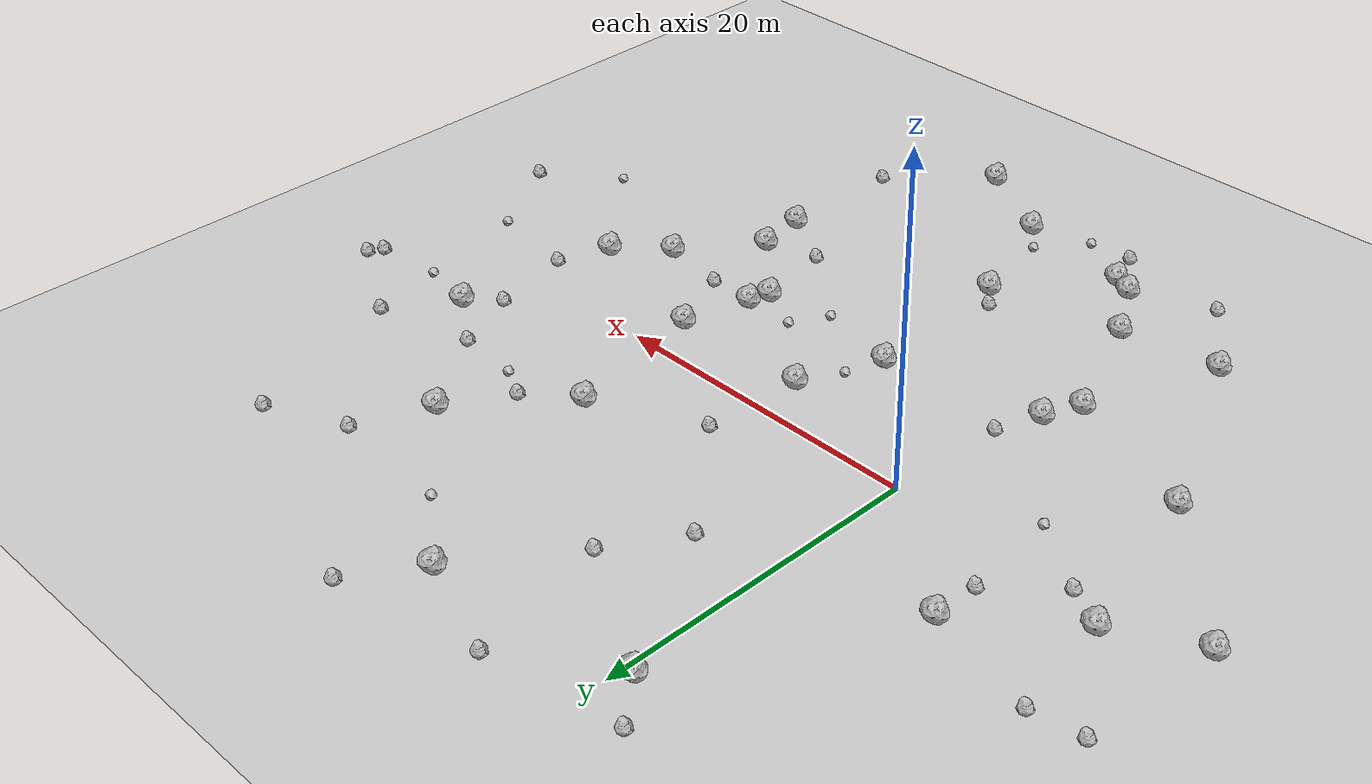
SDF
<sdf version="1.6">
 <world name="default">
  <include><uri>model://custom_ground</uri></include>
  <include><uri>model://sun</uri></include>
  <model name="rock1_0_0">
   <include><uri>model://rock1</uri><pose>17.000178213660845 -28.87803645918632 0.5 0 0 0</pose></include>
  </model>
  <model name="rock1_0_1">
   <include><uri>model://rock1</uri><pose>8.864647107650576 -18.266698169001845 0.5 0 0 0</pose></include>
  </model>
  <model name="rock1_0_2">
   <include><uri>model://rock1</uri><pose>12.009805290419777 20.778022938029174 0.5 0 0 0</pose></include>
  </model>
  <model name="rock1_0_3">
   <include><uri>model://rock1</uri><pose>19.11783946490526 -2.830191385487332 0.5 0 0 0</pose></include>
  </model>
  <model name="rock1_0_4">
   <include><uri>model://rock1</uri><pose>28.275477801045724 -5.199830700054797 0.5 0 0 0</pose></include>
  </model>
  <model name="rock1_0_5">
   <include><uri>model://rock1</uri><pose>8.193961739446433 -8.115403632144961 0.5 0 0 0</pose></include>
  </model>
  <model name="rock1_0_6">
   <include><uri>model://rock1</uri><pose>-18.609844253047257 -1.2738280485224038 0.5 0 0 0</pose></include>
  </model>
  <model name="rock1_0_7">
   <include><uri>model://rock1</uri><pose>-2.461888202025822 -12.49051554507706 0.5 0 0 0</pose></include>
  </model>
  <model name="rock1_0_8">
   <include><uri>model://rock1</uri><pose>-5.673768688803349 -20.82936731330288 0.5 0 0 0</pose></include>
  </model>
  <model name="rock1_0_9">
   <include><uri>model://rock1</uri><pose>22.415381781897032 -15.656251065551377 0.5 0 0 0</pose></include>
  </model>
  <model name="rock1_0_10">
   <include><uri>model://rock1</uri><pose>22.621525095388265 12.513634585462647 0.5 0 0 0</pose></include>
  </model>
  <model name="rock1_0_11">
   <include><uri>model://rock1</uri><pose>17.632661791607063 -8.431889266764895 0.5 0 0 0</pose></include>
  </model>
  <model name="rock1_0_12">
   <include><uri>model://rock1</uri><pose>-1.439267190141436 -10.19157400393167 0.5 0 0 0</pose></include>
  </model>
  <model name="rock1_0_13">
   <include><uri>model://rock1</uri><pose>-11.130100086824799 -9.067945342541982 0.5 0 0 0</pose></include>
  </model>
  <model name="rock1_0_14">
   <include><uri>model://rock1</uri><pose>11.455203371504822 -25.59661957186833 0.5 0 0 0</pose></include>
  </model>
  <model name="rock1_0_15">
   <include><uri>model://rock1</uri><pose>-0.5293848883131922 18.847581116524438 0.5 0 0 0</pose></include>
  </model>
  <model name="rock1_0_16">
   <include><uri>model://rock1</uri><pose>17.99722097729436 -7.040404632938433 0.5 0 0 0</pose></include>
  </model>
  <model name="rock1_0_17">
   <include><uri>model://rock1</uri><pose>21.873496383115707 -12.428618247592752 0.5 0 0 0</pose></include>
  </model>
  <model name="rock1_0_18">
   <include><uri>model://rock1</uri><pose>10.298786313121369 -3.0472604591909125 0.5 0 0 0</pose></include>
  </model>
  <model name="rock1_0_19">
   <include><uri>model://rock1</uri><pose>-7.788093899057575 6.06985416182728 0.5 0 0 0</pose></include>
  </model>
  <model name="rock1_0_20">
   <include><uri>model://rock1</uri><pose>2.730627680503595 -23.759858944267698 0.5 0 0 0</pose></include>
  </model>
  <model name="rock1_0_21">
   <include><uri>model://rock1</uri><pose>30.097744586177114 4.857603896208651 0.5 0 0 0</pose></include>
  </model>
  <model name="rock1_0_22">
   <include><uri>model://rock1</uri><pose>-13.676048023777339 1.2704413457938166 0.5 0 0 0</pose></include>
  </model>
  <model name="rock1_0_23">
   <include><uri>model://rock1</uri><pose>4.046809035472151 -24.44037549329796 0.5 0 0 0</pose></include>
  </model>
  <model name="rock1_0_24">
   <include><uri>model://rock1</uri><pose>25.345491382967175 -7.78632050880438 0.5 0 0 0</pose></include>
  </model>
  <model name="rock1_0_25">
   <include><uri>model://rock1</uri><pose>0.5433630839563648 -19.977496561601697 0.5 0 0 0</pose></include>
  </model>
  <model name="rock1_0_26">
   <include><uri>model://rock1</uri><pose>17.378240793037 6.351210347920393 0.5 0 0 0</pose></include>
  </model>
  <model name="rock2_0_0">
   <include><uri>model://rock2</uri><pose>24.314107509540392 17.040155431373492 0.3 0 0 0</pose></include>
  </model>
  <model name="rock2_0_1">
   <include><uri>model://rock2</uri><pose>-11.41227465724917 -0.03209581568732034 0.3 0 0 0</pose></include>
  </model>
  <model name="rock2_0_2">
   <include><uri>model://rock2</uri><pose>-2.3196174395368203 -25.71199256479658 0.3 0 0 0</pose></include>
  </model>
  <model name="rock2_0_3">
   <include><uri>model://rock2</uri><pose>20.903687236052768 -7.080423527443575 0.3 0 0 0</pose></include>
  </model>
  <model name="rock2_0_4">
   <include><uri>model://rock2</uri><pose>29.236138779787908 19.20378873858521 0.3 0 0 0</pose></include>
  </model>
  <model name="rock2_0_5">
   <include><uri>model://rock2</uri><pose>14.55258543265382 24.84463611523617 0.3 0 0 0</pose></include>
  </model>
  <model name="rock2_0_6">
   <include><uri>model://rock2</uri><pose>-17.908832977637417 7.500257026309299 0.3 0 0 0</pose></include>
  </model>
  <model name="rock2_0_7">
   <include><uri>model://rock2</uri><pose>32.61352874445837 8.887029138159043 0.3 0 0 0</pose></include>
  </model>
  <model name="rock2_0_8">
   <include><uri>model://rock2</uri><pose>37.93652916232535 4.741693024061071 0.3 0 0 0</pose></include>
  </model>
  <model name="rock2_0_9">
   <include><uri>model://rock2</uri><pose>38.46198027559075 5.605968230287203 0.3 0 0 0</pose></include>
  </model>
  <model name="rock2_0_10">
   <include><uri>model://rock2</uri><pose>4.7503702176375775 -26.78755115428505 0.3 0 0 0</pose></include>
  </model>
  <model name="rock2_0_11">
   <include><uri>model://rock2</uri><pose>7.243963860117123 14.3938854331372 0.3 0 0 0</pose></include>
  </model>
  <model name="rock2_0_12">
   <include><uri>model://rock2</uri><pose>-14.807210036500425 7.946614642740734 0.3 0 0 0</pose></include>
  </model>
  <model name="rock2_0_13">
   <include><uri>model://rock2</uri><pose>4.557200551097814 10.027471591222053 0.3 0 0 0</pose></include>
  </model>
  <model name="rock2_0_14">
   <include><uri>model://rock2</uri><pose>-2.9576585368380854 21.536169087038587 0.3 0 0 0</pose></include>
  </model>
  <model name="rock2_0_15">
   <include><uri>model://rock2</uri><pose>-7.943971601777502 3.192666977579357 0.3 0 0 0</pose></include>
  </model>
  <model name="rock2_0_16">
   <include><uri>model://rock2</uri><pose>22.181224107946974 -23.626320641283705 0.3 0 0 0</pose></include>
  </model>
  <model name="rock2_0_17">
   <include><uri>model://rock2</uri><pose>7.596921213921352 -16.730809989397677 0.3 0 0 0</pose></include>
  </model>
  <model name="rock2_0_18">
   <include><uri>model://rock2</uri><pose>29.32284997111364 -1.9465297777502926 0.3 0 0 0</pose></include>
  </model>
  <model name="rock2_0_19">
   <include><uri>model://rock2</uri><pose>38.580506558102144 -8.214020276197235 0.3 0 0 0</pose></include>
  </model>
  <model name="rock2_0_20">
   <include><uri>model://rock2</uri><pose>18.431360009069756 -13.37848299016299 0.3 0 0 0</pose></include>
  </model>
  <model name="rock2_0_21">
   <include><uri>model://rock2</uri><pose>20.23146121236349 8.666358381879427 0.3 0 0 0</pose></include>
  </model>
  <model name="rock2_0_22">
   <include><uri>model://rock2</uri><pose>26.351948073171563 7.344535848564632 0.3 0 0 0</pose></include>
  </model>
  <model name="rock2_0_23">
   <include><uri>model://rock2</uri><pose>-0.5093665680583754 -7.379565872394895 0.3 0 0 0</pose></include>
  </model>
  <model name="rock2_0_24">
   <include><uri>model://rock2</uri><pose>28.17129119100703 3.227762996286735 0.3 0 0 0</pose></include>
  </model>
  <model name="rock2_0_25">
   <include><uri>model://rock2</uri><pose>5.485107847244318 23.005035309765333 0.3 0 0 0</pose></include>
  </model>
  <model name="rock2_0_26">
   <include><uri>model://rock2</uri><pose>10.572351414022052 3.249788516072158 0.3 0 0 0</pose></include>
  </model>
  <model name="rock3_0_0">
   <include><uri>model://rock3</uri><pose>33.65126602223509 4.185834047100904 0.2 0 0 0</pose></include>
  </model>
  <model name="rock3_0_1">
   <include><uri>model://rock3</uri><pose>8.86586302067299 -5.709398091394121 0.2 0 0 0</pose></include>
  </model>
  <model name="rock3_0_2">
   <include><uri>model://rock3</uri><pose>13.378659256419724 -9.341892374225772 0.2 0 0 0</pose></include>
  </model>
  <model name="rock3_0_3">
   <include><uri>model://rock3</uri><pose>9.789290235167321 -23.79115604533697 0.2 0 0 0</pose></include>
  </model>
  <model name="rock3_0_4">
   <include><uri>model://rock3</uri><pose>34.13312206582879 -11.643505765901242 0.2 0 0 0</pose></include>
  </model>
  <model name="rock3_0_5">
   <include><uri>model://rock3</uri><pose>35.20311925695809 -2.84096042976228 0.2 0 0 0</pose></include>
  </model>
  <model name="rock3_0_6">
   <include><uri>model://rock3</uri><pose>14.630788231377153 -7.078976804626279 0.2 0 0 0</pose></include>
  </model>
  <model name="rock3_0_7">
   <include><uri>model://rock3</uri><pose>22.30879395226814 7.578517933641976 0.2 0 0 0</pose></include>
  </model>
  <model name="rock3_0_8">
   <include><uri>model://rock3</uri><pose>16.435566679675084 17.43609201347899 0.2 0 0 0</pose></include>
  </model>
  <model name="rock3_0_9">
   <include><uri>model://rock3</uri><pose>7.522523376136554 -26.680730015588885 0.2 0 0 0</pose></include>
  </model>
  <model name="rock3_0_10">
   <include><uri>model://rock3</uri><pose>-7.316015091978825 -3.0137532235304505 0.2 0 0 0</pose></include>
  </model>
 </world>
</sdf>
